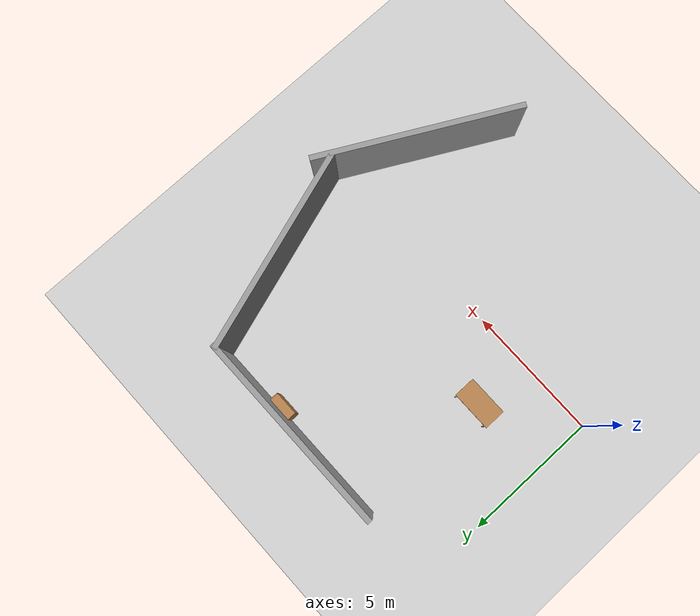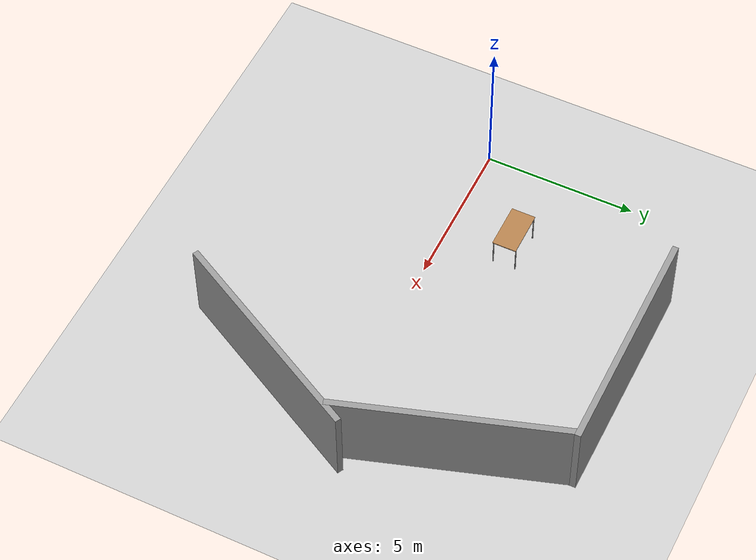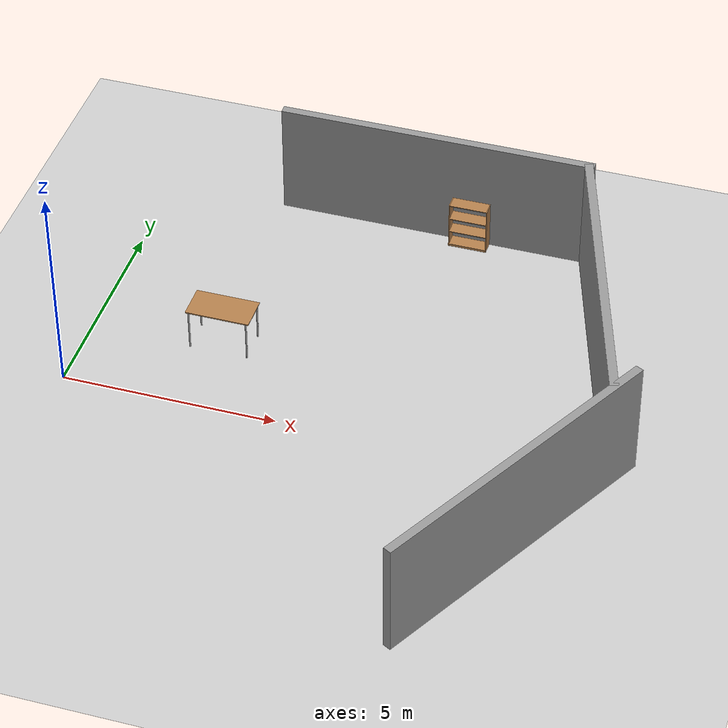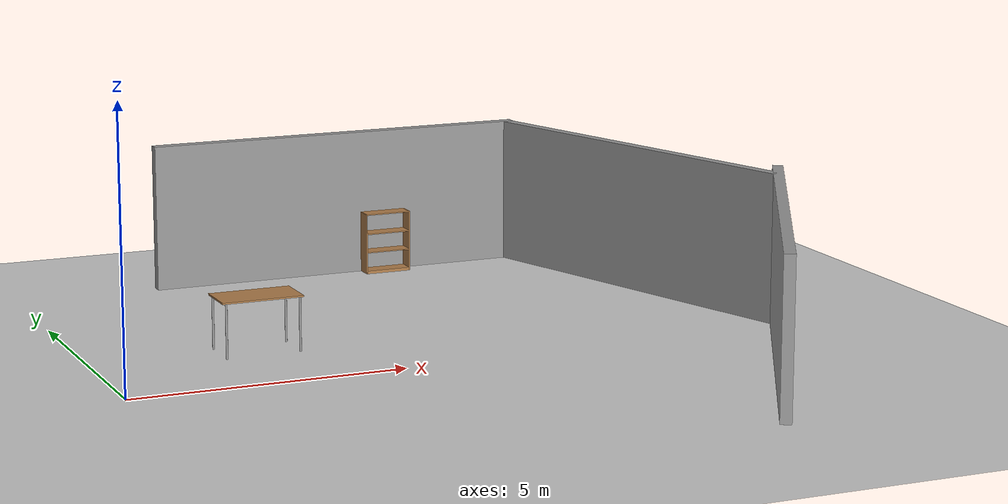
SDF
<sdf version="1.6">
 <world name="default">
  <model name="ground_plane">
   <static>1</static>
   <link name="link">
    <collision name="collision">
     <geometry><plane><normal>0 0 1</normal><size>100 100</size></plane></geometry>
     <surface><friction><ode><mu>100</mu><mu2>50</mu2></ode></friction></surface>
    </collision>
    <visual name="visual">
     <cast_shadows>0</cast_shadows>
     <geometry><plane><normal>0 0 1</normal><size>100 100</size></plane></geometry>
     <material>
      <script><uri>file://media/materials/scripts/gazebo.material</uri><name>Gazebo/Grey</name></script>
     </material>
    </visual>
   </link>
  </model>
  <model name="table">
   <static>1</static>
   <link name="link">
    <collision name="surface">
     <pose>0 0 1 0 -0 0</pose>
     <geometry><box><size>1.5 0.8 0.03</size></box></geometry>
     <surface><friction><ode><mu>0.6</mu><mu2>0.6</mu2></ode></friction></surface>
    </collision>
    <visual name="visual1">
     <pose>0 0 1 0 -0 0</pose>
     <geometry><box><size>1.5 0.8 0.03</size></box></geometry>
     <material>
      <script><uri>file://media/materials/scripts/gazebo.material</uri><name>Gazebo/Wood</name></script>
     </material>
    </visual>
    <collision name="front_left_leg">
     <pose>0.68 0.38 0.5 0 -0 0</pose>
     <geometry><cylinder><radius>0.02</radius><length>1</length></cylinder></geometry>
    </collision>
    <visual name="front_left_leg">
     <pose>0.68 0.38 0.5 0 -0 0</pose>
     <geometry><cylinder><radius>0.02</radius><length>1</length></cylinder></geometry>
     <material>
      <script><uri>file://media/materials/scripts/gazebo.material</uri><name>Gazebo/Grey</name></script>
     </material>
    </visual>
    <collision name="front_right_leg">
     <pose>0.68 -0.38 0.5 0 -0 0</pose>
     <geometry><cylinder><radius>0.02</radius><length>1</length></cylinder></geometry>
    </collision>
    <visual name="front_right_leg">
     <pose>0.68 -0.38 0.5 0 -0 0</pose>
     <geometry><cylinder><radius>0.02</radius><length>1</length></cylinder></geometry>
     <material>
      <script><uri>file://media/materials/scripts/gazebo.material</uri><name>Gazebo/Grey</name></script>
     </material>
    </visual>
    <collision name="back_right_leg">
     <pose>-0.68 -0.38 0.5 0 -0 0</pose>
     <geometry><cylinder><radius>0.02</radius><length>1</length></cylinder></geometry>
    </collision>
    <visual name="back_right_leg">
     <pose>-0.68 -0.38 0.5 0 -0 0</pose>
     <geometry><cylinder><radius>0.02</radius><length>1</length></cylinder></geometry>
     <material>
      <script><uri>file://media/materials/scripts/gazebo.material</uri><name>Gazebo/Grey</name></script>
     </material>
    </visual>
    <collision name="back_left_leg">
     <pose>-0.68 0.38 0.5 0 -0 0</pose>
     <geometry><cylinder><radius>0.02</radius><length>1</length></cylinder></geometry>
    </collision>
    <visual name="back_left_leg">
     <pose>-0.68 0.38 0.5 0 -0 0</pose>
     <geometry><cylinder><radius>0.02</radius><length>1</length></cylinder></geometry>
     <material>
      <script><uri>file://media/materials/scripts/gazebo.material</uri><name>Gazebo/Grey</name></script>
     </material>
    </visual>
   </link>
   <pose>3.03496 2.19283 0 0 -0 0</pose>
  </model>
  <model name="grey_wall_clone_0">
   <static>1</static>
   <link name="link">
    <pose>0 0 1.4 0 -0 0</pose>
    <collision name="collision"><geometry><box><size>7.5 0.2 2.8</size></box></geometry></collision>
    <visual name="visual">
     <cast_shadows>0</cast_shadows>
     <geometry><box><size>7.5 0.2 2.8</size></box></geometry>
     <material>
      <script>
       <uri>model://grey_wall/materials/scripts</uri>
       <uri>model://grey_wall/materials/textures</uri>
       <name>vrc/grey_wall</name>
      </script>
     </material>
    </visual>
   </link>
   <pose>6.52222 7.38942 0 0 -0 0</pose>
  </model>
  <model name="grey_wall_clone_1">
   <static>1</static>
   <link name="link">
    <pose>0 0 1.4 0 -0 0</pose>
    <collision name="collision"><geometry><box><size>7.5 0.2 2.8</size></box></geometry></collision>
    <visual name="visual">
     <cast_shadows>0</cast_shadows>
     <geometry><box><size>7.5 0.2 2.8</size></box></geometry>
     <material>
      <script>
       <uri>model://grey_wall/materials/scripts</uri>
       <uri>model://grey_wall/materials/textures</uri>
       <name>vrc/grey_wall</name>
      </script>
     </material>
    </visual>
   </link>
   <pose>11.2574 3.86782 0 0 -0 1.88044</pose>
  </model>
  <model name="grey_wall_clone_2">
   <static>1</static>
   <link name="link">
    <pose>0 0 1.4 0 -0 0</pose>
    <collision name="collision"><geometry><box><size>7.5 0.2 2.8</size></box></geometry></collision>
    <visual name="visual">
     <cast_shadows>0</cast_shadows>
     <geometry><box><size>7.5 0.2 2.8</size></box></geometry>
     <material>
      <script>
       <uri>model://grey_wall/materials/scripts</uri>
       <uri>model://grey_wall/materials/textures</uri>
       <name>vrc/grey_wall</name>
      </script>
     </material>
    </visual>
   </link>
   <pose>11.027 -2.32832 0 0 -0 1.08167</pose>
  </model>
  <model name="bookshelf">
   <static>1</static>
   <link name="link">
    <inertial><mass>1</mass></inertial>
    <collision name="back">
     <pose>0 0.005 0.6 0 -0 0</pose>
     <geometry><box><size>0.9 0.01 1.2</size></box></geometry>
    </collision>
    <visual name="visual1">
     <pose>0 0.005 0.6 0 -0 0</pose>
     <geometry><box><size>0.9 0.01 1.2</size></box></geometry>
     <material>
      <script><uri>file://media/materials/scripts/gazebo.material</uri><name>Gazebo/Wood</name></script>
     </material>
    </visual>
    <collision name="left_side">
     <pose>0.45 -0.195 0.6 0 -0 0</pose>
     <geometry><box><size>0.02 0.4 1.2</size></box></geometry>
    </collision>
    <visual name="visual2">
     <pose>0.45 -0.195 0.6 0 -0 0</pose>
     <geometry><box><size>0.02 0.4 1.2</size></box></geometry>
     <material>
      <script><uri>file://media/materials/scripts/gazebo.material</uri><name>Gazebo/Wood</name></script>
     </material>
    </visual>
    <collision name="right_side">
     <pose>-0.45 -0.195 0.6 0 -0 0</pose>
     <geometry><box><size>0.02 0.4 1.2</size></box></geometry>
    </collision>
    <visual name="visual3">
     <pose>-0.45 -0.195 0.6 0 -0 0</pose>
     <geometry><box><size>0.02 0.4 1.2</size></box></geometry>
     <material>
      <script><uri>file://media/materials/scripts/gazebo.material</uri><name>Gazebo/Wood</name></script>
     </material>
    </visual>
    <collision name="bottom">
     <pose>0 -0.195 0.03 0 -0 0</pose>
     <geometry><box><size>0.88 0.4 0.06</size></box></geometry>
    </collision>
    <visual name="visual4">
     <pose>0 -0.195 0.03 0 -0 0</pose>
     <geometry><box><size>0.88 0.4 0.06</size></box></geometry>
     <material>
      <script><uri>file://media/materials/scripts/gazebo.material</uri><name>Gazebo/Wood</name></script>
     </material>
    </visual>
    <collision name="top">
     <pose>0 -0.195 1.19 0 -0 0</pose>
     <geometry><box><size>0.88 0.4 0.02</size></box></geometry>
    </collision>
    <visual name="visual5">
     <pose>0 -0.195 1.19 0 -0 0</pose>
     <geometry><box><size>0.88 0.4 0.02</size></box></geometry>
     <material>
      <script><uri>file://media/materials/scripts/gazebo.material</uri><name>Gazebo/Wood</name></script>
     </material>
    </visual>
    <collision name="low_shelf">
     <pose>0 -0.195 0.43 0 -0 0</pose>
     <geometry><box><size>0.88 0.4 0.02</size></box></geometry>
    </collision>
    <visual name="visual6">
     <pose>0 -0.195 0.43 0 -0 0</pose>
     <geometry><box><size>0.88 0.4 0.02</size></box></geometry>
     <material>
      <script><uri>file://media/materials/scripts/gazebo.material</uri><name>Gazebo/Wood</name></script>
     </material>
    </visual>
    <collision name="high_shelf">
     <pose>0 -0.195 0.8 0 -0 0</pose>
     <geometry><box><size>0.88 0.4 0.02</size></box></geometry>
    </collision>
    <visual name="visual7">
     <pose>0 -0.195 0.8 0 -0 0</pose>
     <geometry><box><size>0.88 0.4 0.02</size></box></geometry>
     <material>
      <script><uri>file://media/materials/scripts/gazebo.material</uri><name>Gazebo/Wood</name></script>
     </material>
    </visual>
   </link>
   <pose>7.4207 7.36201 0 0 -0 0</pose>
  </model>
 </world>
</sdf>
